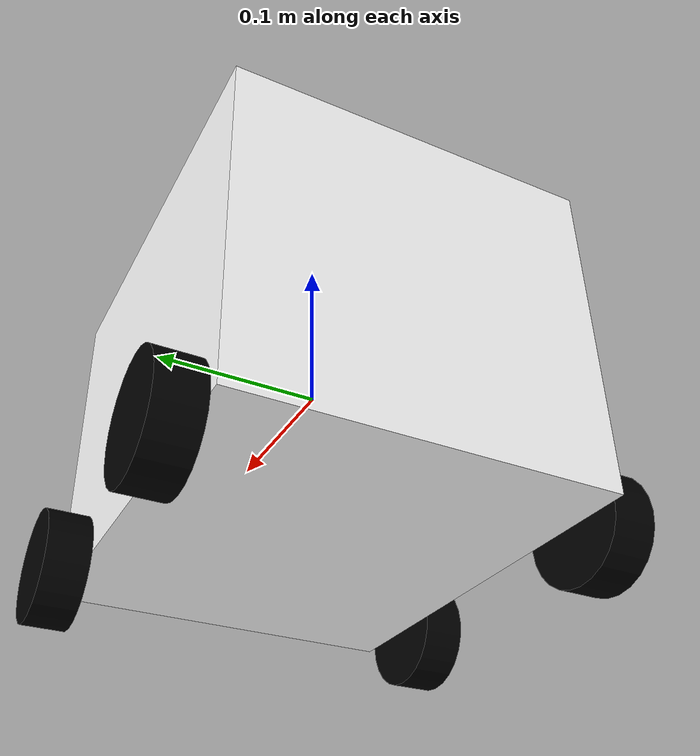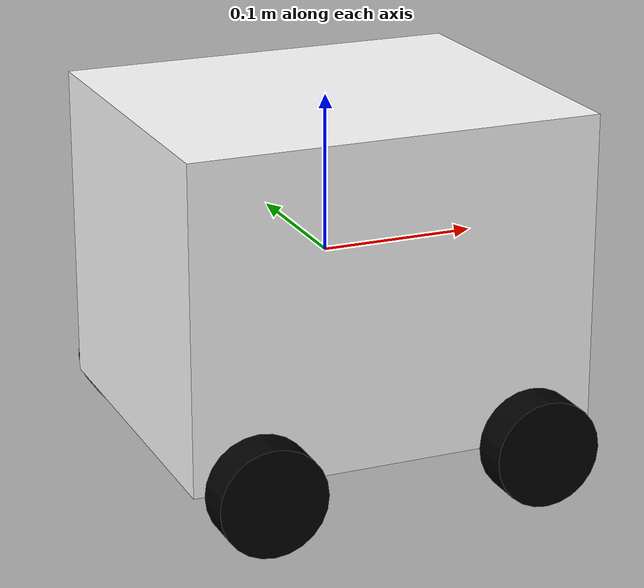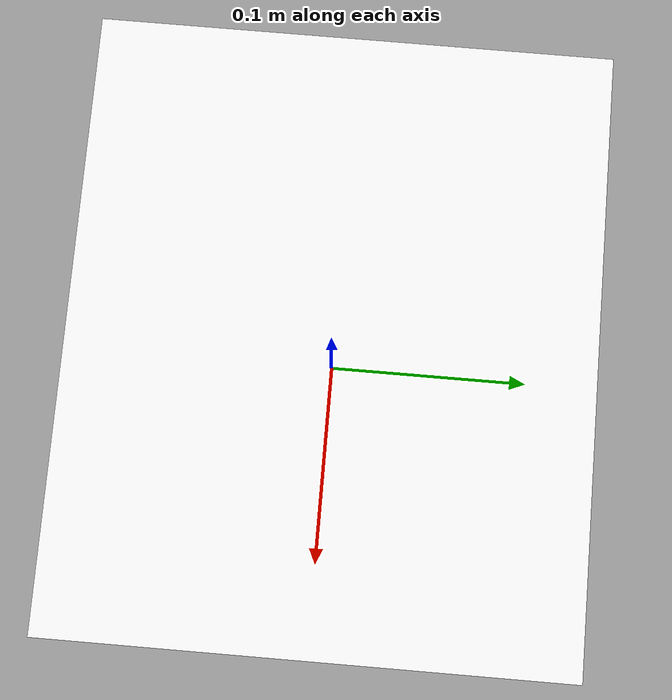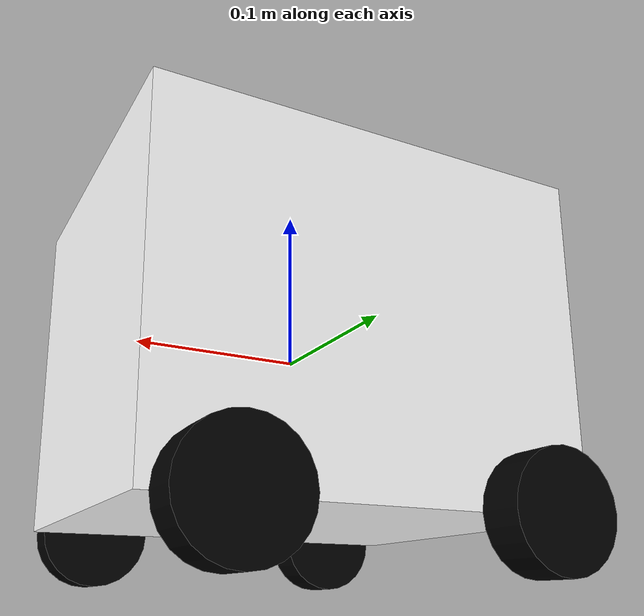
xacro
<?xml version="1.0"?>
<robot xmlns:xacro="http://www.ros.org/wiki/xacro"  name="robot">

    <xacro:include filename="robot_core.xacro" />

    <xacro:include filename="gazebo_control.xacro" />
</robot>

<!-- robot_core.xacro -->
<robot xmlns:xacro="http://ros.org/wiki/xacro" name="delivery_bot">

  <!-- Include macros -->
  <xacro:include filename="inertial_macros.xacro"/>

  <!-- Materials -->
  <material name="grey">
    <color rgba="0.5 0.5 0.5 1"/>
  </material>

  <material name="white">
    <color rgba="1 1 1 1"/>
  </material>

  <material name="red">
    <color rgba="1 0 0 1"/>
  </material>

  <material name="black">
    <color rgba="0 0 0 1"/>
  </material>

  <!-- Parameters -->
  <xacro:property name="body_length" value="0.26"/>
  <xacro:property name="body_width" value="0.22"/>
  <xacro:property name="body_height" value="0.203"/>
  <xacro:property name="wheel_to_body_bottom" value="0.01487"/>
  <xacro:property name="body_center_z" value="${wheel_to_body_bottom + body_height / 2}"/>
  <xacro:property name="wheel_radius" value="0.034"/>
  <xacro:property name="wheel_width" value="0.0256"/>
  <xacro:property name="body_mass" value="0.8"/>
  <xacro:property name="wheel_mass" value="0.1"/>
  <xacro:property name="material_density" value="1180" />

  <!-- Base link -->
  <link name="base_link" />

  <!-- Chassis joint -->
  <joint name="chassis_joint" type="fixed">
    <parent link="base_link"/>
    <child link="chassis"/>
    <origin xyz="0 0 0"/>
  </joint>

  <!-- Chassis link -->
  <link name="chassis">
    <visual>
      <origin xyz="0 0 0" />
      <geometry>
        <box size="${body_length} ${body_width} ${body_height}" />
      </geometry>
      <material name="white" />
    </visual>
    <collision>
      <origin xyz="0 0 0" />
      <geometry>
        <box size="${body_length} ${body_width} ${body_height}" />
      </geometry>
    </collision>
    <xacro:inertial_box mass="${body_mass}" x="${body_length}" y="${body_width}" z="${body_height}">
      <origin xyz="0 0 0" />
    </xacro:inertial_box>

  </link>

  <gazebo reference="chassis">
    <material>Gazebo/White</material>
    <mu1>0.1</mu1>
    <mu2>0.1</mu2>
  </gazebo>
  <!-- LEFT FRONT WHEEL LINK -->
  <joint name="left_front_wheel_joint" type="continuous">
    <parent link="base_link"/>
    <child link="left_front_wheel"/>
    <origin xyz="${body_length/2-1.2*wheel_radius} ${-body_width/2-wheel_width/2} ${-body_height/2}" rpy="-${pi/2} 0 0"/>
    <axis xyz="0 0 1"/>
  </joint>

  <link name="left_front_wheel">
    <visual>
      <geometry>
        <cylinder radius="${wheel_radius}" length="${wheel_width}"/>
      </geometry>
      <material name="black"/>
    </visual>
    <collision>
      <geometry>
        <cylinder radius="${wheel_radius}" length="${wheel_width}"/>
      </geometry>
    </collision>
    <xacro:inertial_cylinder mass="${wheel_mass}" length="${wheel_width}" radius="${wheel_radius}">
      <origin xyz="0 0 0" rpy="0 0 0" />
    </xacro:inertial_cylinder>
  </link>

  <gazebo reference="left_front_wheel">
    <material>Gazebo/Black</material>
    <mu1>0.1</mu1>
    <mu2>0.1</mu2>
  </gazebo>

  <!-- RIGHT FRONT WHEEL LINK -->
  <joint name="right_front_wheel_joint" type="continuous">
    <parent link="base_link"/>
    <child link="right_front_wheel"/>
    <origin xyz="${body_length/2-1.2*wheel_radius} ${body_width/2+wheel_width/2} ${-body_height/2}" rpy="${pi/2} 0 0"/>
    <axis xyz="0 0 -1"/>
  </joint>

  <link name="right_front_wheel">
    <visual>
      <geometry>
        <cylinder radius="${wheel_radius}" length="${wheel_width}"/>
      </geometry>
      <material name="black"/>
    </visual>
    <collision>
      <geometry>
        <cylinder radius="${wheel_radius}" length="${wheel_width}"/>
      </geometry>
    </collision>
     <xacro:inertial_cylinder mass="${wheel_mass}" length="${wheel_width}" radius="${wheel_radius}">
      <origin xyz="0 0 0" rpy="0 0 0" />
    </xacro:inertial_cylinder>
  </link>

  <gazebo reference="right_front_wheel">
    <material>Gazebo/Black</material>
    <mu1>0.1</mu1>
    <mu2>0.1</mu2>
  </gazebo>

 <!-- LEFT REAR WHEEL LINK -->
  <joint name="left_rear_wheel_joint" type="continuous">
    <parent link="base_link"/>
    <child link="left_rear_wheel"/>
    <origin xyz="${-body_length/2+1.2*wheel_radius} ${-body_width/2-wheel_width/2} ${-body_height/2}" rpy="-${pi/2} 0 0"/>
    <axis xyz="0 0 1"/>
  </joint>

  <link name="left_rear_wheel">
    <visual>
      <geometry>
        <cylinder radius="${wheel_radius}" length="${wheel_width}"/>
      </geometry>
      <material name="black"/>
    </visual>
    <collision>
      <geometry>
        <cylinder radius="${wheel_radius}" length="${wheel_width}"/>
      </geometry>
    </collision>
     <xacro:inertial_cylinder mass="${wheel_mass}" length="${wheel_width}" radius="${wheel_radius}">
      <origin xyz="0 0 0" rpy="0 0 0" />
    </xacro:inertial_cylinder>
  </link>

  <gazebo reference="left_rear_wheel">
    <material>Gazebo/Black</material>
    <mu1>0.1</mu1>
    <mu2>0.1</mu2>

  </gazebo>

  <!-- RIGHT REAR WHEEL LINK -->
  <joint name="right_rear_wheel_joint" type="continuous">
    <parent link="base_link"/>
    <child link="right_rear_wheel"/>
    <origin xyz="${-body_length/2+1.2*wheel_radius} ${body_width/2+wheel_width/2} ${-body_height/2}" rpy="${pi/2} 0 0"/>
    <axis xyz="0 0 -1"/>
  </joint>

  <link name="right_rear_wheel">
    <visual>
      <geometry>
        <cylinder radius="${wheel_radius}" length="${wheel_width}"/>
      </geometry>
      <material name="black"/>
    </visual>
    <collision>
      <geometry>
        <cylinder radius="${wheel_radius}" length="${wheel_width}"/>
      </geometry>
    </collision>
     <xacro:inertial_cylinder mass="${wheel_mass}" length="${wheel_width}" radius="${wheel_radius}">
      <origin xyz="0 0 0" rpy="0 0 0" />
    </xacro:inertial_cylinder>
  </link>

  <gazebo reference="right_rear_wheel">
    <material>Gazebo/Black</material>
    <mu1>0.1</mu1>
    <mu2>0.1</mu2>
  </gazebo>

</robot>

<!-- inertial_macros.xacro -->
<robot xmlns:xacro="http://www.ros.org/wiki/xacro" >

    <!-- Specify some standard inertial calculations https://en.wikipedia.org/wiki/List_of_moments_of_inertia -->
    <!-- These make use of xacro's mathematical functionality -->

   <xacro:macro name="inertial_box" params="mass x y z *origin">
        <inertial>
            <xacro:insert_block name="origin"/>
            <mass value="${body_mass}" />
            <inertia ixx="${(1/12) * mass * (y*y+z*z)}" ixy="0.0" ixz="0.0"
                    iyy="${(1/12) * mass * (x*x+z*z)}" iyz="0.0"
                    izz="${(1/12) * mass * (x*x+y*y)}" />
        </inertial>
    </xacro:macro>

    <xacro:macro name="inertial_cylinder" params="mass length radius *origin">
        <inertial>
            <xacro:insert_block name="origin"/>
            <mass value="${wheel_mass}" />
            <inertia ixx="${(1/12) * mass * (3*radius*radius + length*length)}" ixy="0.0" ixz="0.0"
                    iyy="${(1/12) * mass * (3*radius*radius + length*length)}" iyz="0.0"
                    izz="${(1/2) * mass * (radius*radius)}" />
        </inertial>
    </xacro:macro>

</robot>
